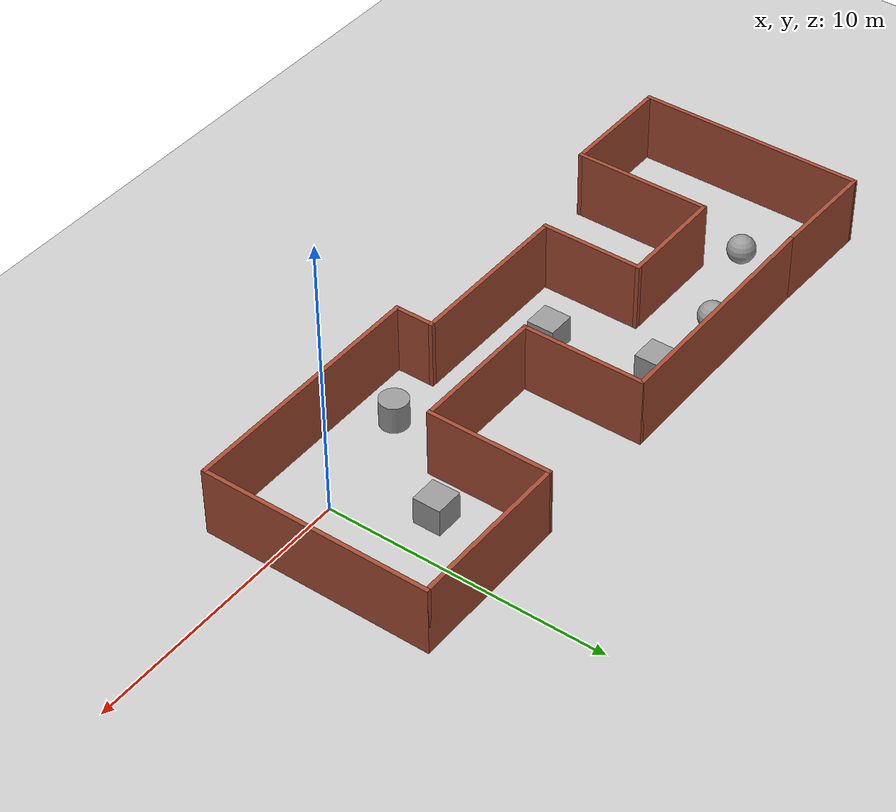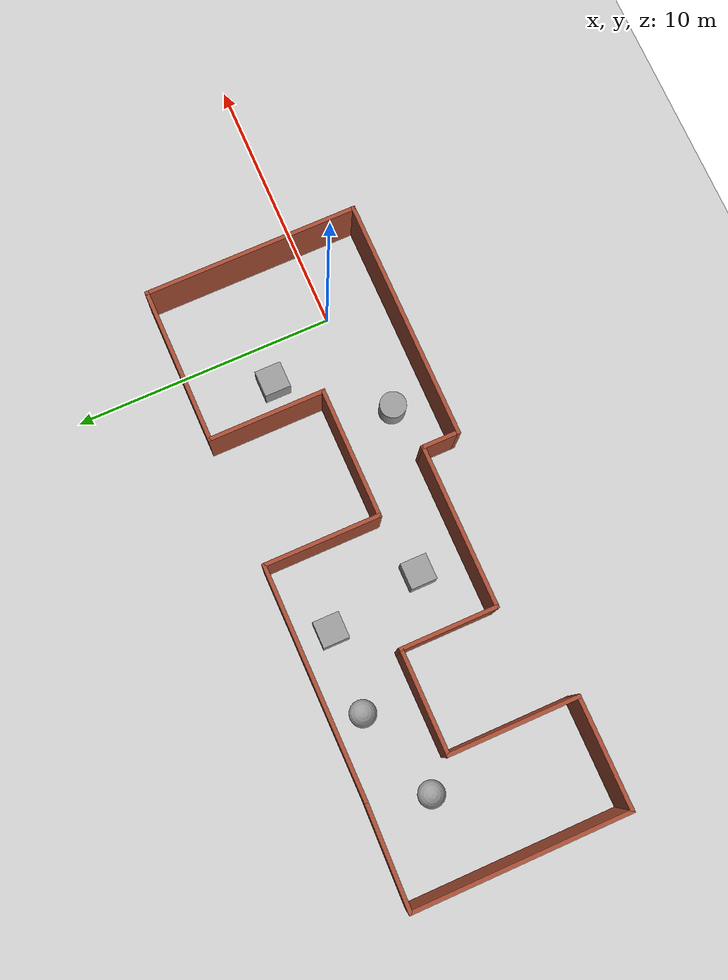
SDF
<sdf version="1.6">
 <world name="default">
  <light name="sun" type="directional">
   <pose>0 0 10 0 -0 0</pose>
   <diffuse>0.8 0.8 0.8 1</diffuse>
   <specular>0.2 0.2 0.2 1</specular>
   <attenuation>
    <range>1000</range>
    <constant>0.9</constant>
    <linear>0.01</linear>
    <quadratic>0.001</quadratic>
   </attenuation>
   <direction>-0.5 0.1 -0.9</direction>
  </light>
  <model name="ground_plane">
   <static>1</static>
   <link name="link">
    <collision name="collision">
     <geometry><plane><normal>0 0 1</normal><size>100 100</size></plane></geometry>
     <surface>
      <contact><collide_bitmask>65535</collide_bitmask></contact>
      <friction><ode><mu>100</mu><mu2>50</mu2></ode></friction>
     </surface>
    </collision>
    <visual name="visual">
     <cast_shadows>0</cast_shadows>
     <geometry><plane><normal>0 0 1</normal><size>100 100</size></plane></geometry>
     <material>
      <script><uri>file://media/materials/scripts/gazebo.material</uri><name>Gazebo/Grey</name></script>
     </material>
    </visual>
   </link>
  </model>
  <gravity>0 0 -9.8</gravity>
  <magnetic_field>6e-06 2.3e-05 -4.2e-05</magnetic_field>
  <atmosphere type="adiabatic"/>
  <physics name="default_physics" default="0" type="ode">
   <max_step_size>0.001</max_step_size>
   <real_time_factor>1</real_time_factor>
   <real_time_update_rate>1000</real_time_update_rate>
  </physics>
  <scene><ambient>0.4 0.4 0.4 1</ambient><background>0.7 0.7 0.7 1</background><shadows>1</shadows></scene>
  <audio><device>default</device></audio>
  <spherical_coordinates>
   <surface_model>EARTH_WGS84</surface_model>
   <latitude_deg>0</latitude_deg>
   <longitude_deg>0</longitude_deg>
   <elevation>0</elevation>
   <heading_deg>0</heading_deg>
  </spherical_coordinates>
  <model name="ravi">
   <pose>-8.74678 1.85668 0 0 -0 0</pose>
   <link name="Wall_0">
    <collision name="Wall_0_Collision">
     <geometry><box><size>8.75 0.15 2.5</size></box></geometry>
     <pose>0 0 1.25 0 -0 0</pose>
    </collision>
    <visual name="Wall_0_Visual">
     <pose>0 0 1.25 0 -0 0</pose>
     <geometry><box><size>8.75 0.15 2.5</size></box></geometry>
     <material>
      <script><uri>file://media/materials/scripts/gazebo.material</uri><name>Gazebo/Bricks</name></script>
      <ambient>1 1 1 1</ambient>
     </material>
     <meta><layer>0</layer></meta>
    </visual>
    <pose>-3.42404 3.99904 0 0 -0 0</pose>
   </link>
   <link name="Wall_1">
    <collision name="Wall_1_Collision">
     <geometry><box><size>4.5 0.15 2.5</size></box></geometry>
     <pose>0 0 1.25 0 -0 0</pose>
    </collision>
    <visual name="Wall_1_Visual">
     <pose>0 0 1.25 0 -0 0</pose>
     <geometry><box><size>4.5 0.15 2.5</size></box></geometry>
     <material>
      <script><uri>file://media/materials/scripts/gazebo.material</uri><name>Gazebo/Bricks</name></script>
      <ambient>1 1 1 1</ambient>
     </material>
     <meta><layer>0</layer></meta>
    </visual>
    <pose>0.875961 1.82404 0 0 -0 -1.5708</pose>
   </link>
   <link name="Wall_10">
    <collision name="Wall_10_Collision">
     <geometry><box><size>4 0.15 2.5</size></box></geometry>
     <pose>0 0 1.25 0 -0 0</pose>
    </collision>
    <visual name="Wall_10_Visual">
     <pose>0 0 1.25 0 -0 0</pose>
     <geometry><box><size>4 0.15 2.5</size></box></geometry>
     <material>
      <script><uri>file://media/materials/scripts/gazebo.material</uri><name>Gazebo/Bricks</name></script>
      <ambient>1 1 1 1</ambient>
     </material>
     <meta><layer>0</layer></meta>
    </visual>
    <pose>-5.54904 0.849039 0 0 -0 3.14159</pose>
   </link>
   <link name="Wall_11">
    <collision name="Wall_11_Collision">
     <geometry><box><size>5 0.15 2.5</size></box></geometry>
     <pose>0 0 1.25 0 -0 0</pose>
    </collision>
    <visual name="Wall_11_Visual">
     <pose>0 0 1.25 0 -0 0</pose>
     <geometry><box><size>5 0.15 2.5</size></box></geometry>
     <material>
      <script><uri>file://media/materials/scripts/gazebo.material</uri><name>Gazebo/Bricks</name></script>
      <ambient>1 1 1 1</ambient>
     </material>
     <meta><layer>0</layer></meta>
    </visual>
    <pose>-7.47404 -1.57596 0 0 -0 -1.5708</pose>
   </link>
   <link name="Wall_12">
    <collision name="Wall_12_Collision">
     <geometry><box><size>4.25 0.15 2.5</size></box></geometry>
     <pose>0 0 1.25 0 -0 0</pose>
    </collision>
    <visual name="Wall_12_Visual">
     <pose>0 0 1.25 0 -0 0</pose>
     <geometry><box><size>4.25 0.15 2.5</size></box></geometry>
     <material>
      <script><uri>file://media/materials/scripts/gazebo.material</uri><name>Gazebo/Bricks</name></script>
      <ambient>1 1 1 1</ambient>
     </material>
     <meta><layer>0</layer></meta>
    </visual>
    <pose>-9.52404 -4.00096 0 0 -0 3.14159</pose>
   </link>
   <link name="Wall_13">
    <collision name="Wall_13_Collision">
     <geometry><box><size>8.25 0.15 2.5</size></box></geometry>
     <pose>0 0 1.25 0 -0 0</pose>
    </collision>
    <visual name="Wall_13_Visual">
     <pose>0 0 1.25 0 -0 0</pose>
     <geometry><box><size>8.25 0.15 2.5</size></box></geometry>
     <material>
      <script><uri>file://media/materials/scripts/gazebo.material</uri><name>Gazebo/Bricks</name></script>
      <ambient>1 1 1 1</ambient>
     </material>
     <meta><layer>0</layer></meta>
    </visual>
    <pose>-11.574 0.049039 0 0 -0 1.5708</pose>
   </link>
   <link name="Wall_14">
    <collision name="Wall_14_Collision">
     <geometry><box><size>4.0013 0.15 2.5</size></box></geometry>
     <pose>0 0 1.25 0 -0 0</pose>
    </collision>
    <visual name="Wall_14_Visual">
     <pose>0 0 1.25 0 -0 0</pose>
     <geometry><box><size>4.0013 0.15 2.5</size></box></geometry>
     <material>
      <script><uri>file://media/materials/scripts/gazebo.material</uri><name>Gazebo/Bricks</name></script>
      <ambient>1 1 1 1</ambient>
     </material>
     <meta><layer>0</layer></meta>
    </visual>
    <pose>-9.64904 4.04904 0 0 -0 -0.025968</pose>
   </link>
   <link name="Wall_2">
    <collision name="Wall_2_Collision">
     <geometry><box><size>5 0.15 2.5</size></box></geometry>
     <pose>0 0 1.25 0 -0 0</pose>
    </collision>
    <visual name="Wall_2_Visual">
     <pose>0 0 1.25 0 -0 0</pose>
     <geometry><box><size>5 0.15 2.5</size></box></geometry>
     <material>
      <script><uri>file://media/materials/scripts/gazebo.material</uri><name>Gazebo/Bricks</name></script>
      <ambient>1 1 1 1</ambient>
     </material>
     <meta><layer>0</layer></meta>
    </visual>
    <pose>3.30096 -0.350961 0 0 -0 0</pose>
   </link>
   <link name="Wall_3">
    <collision name="Wall_3_Collision">
     <geometry><box><size>4.5 0.15 2.5</size></box></geometry>
     <pose>0 0 1.25 0 -0 0</pose>
    </collision>
    <visual name="Wall_3_Visual">
     <pose>0 0 1.25 0 -0 0</pose>
     <geometry><box><size>4.5 0.15 2.5</size></box></geometry>
     <material>
      <script><uri>file://media/materials/scripts/gazebo.material</uri><name>Gazebo/Bricks</name></script>
      <ambient>1 1 1 1</ambient>
     </material>
     <meta><layer>0</layer></meta>
    </visual>
    <pose>5.72596 1.82404 0 0 -0 1.5708</pose>
   </link>
   <link name="Wall_4">
    <collision name="Wall_4_Collision">
     <geometry><box><size>6 0.15 2.5</size></box></geometry>
     <pose>0 0 1.25 0 -0 0</pose>
    </collision>
    <visual name="Wall_4_Visual">
     <pose>0 0 1.25 0 -0 0</pose>
     <geometry><box><size>6 0.15 2.5</size></box></geometry>
     <material>
      <script><uri>file://media/materials/scripts/gazebo.material</uri><name>Gazebo/Bricks</name></script>
      <ambient>1 1 1 1</ambient>
     </material>
     <meta><layer>0</layer></meta>
    </visual>
    <pose>8.65096 3.99904 0 0 -0 0</pose>
   </link>
   <link name="Wall_5">
    <collision name="Wall_5_Collision">
     <geometry><box><size>8.25 0.15 2.5</size></box></geometry>
     <pose>0 0 1.25 0 -0 0</pose>
    </collision>
    <visual name="Wall_5_Visual">
     <pose>0 0 1.25 0 -0 0</pose>
     <geometry><box><size>8.25 0.15 2.5</size></box></geometry>
     <material>
      <script><uri>file://media/materials/scripts/gazebo.material</uri><name>Gazebo/Bricks</name></script>
      <ambient>1 1 1 1</ambient>
     </material>
     <meta><layer>0</layer></meta>
    </visual>
    <pose>11.576 -0.050961 0 0 -0 -1.5708</pose>
   </link>
   <link name="Wall_6">
    <collision name="Wall_6_Collision">
     <geometry><box><size>9.25 0.15 2.5</size></box></geometry>
     <pose>0 0 1.25 0 -0 0</pose>
    </collision>
    <visual name="Wall_6_Visual">
     <pose>0 0 1.25 0 -0 0</pose>
     <geometry><box><size>9.25 0.15 2.5</size></box></geometry>
     <material>
      <script><uri>file://media/materials/scripts/gazebo.material</uri><name>Gazebo/Bricks</name></script>
      <ambient>1 1 1 1</ambient>
     </material>
     <meta><layer>0</layer></meta>
    </visual>
    <pose>7.02596 -4.10096 0 0 -0 3.14159</pose>
   </link>
   <link name="Wall_7">
    <collision name="Wall_7_Collision">
     <geometry><box><size>1.5 0.15 2.5</size></box></geometry>
     <pose>0 0 1.25 0 -0 0</pose>
    </collision>
    <visual name="Wall_7_Visual">
     <pose>0 0 1.25 0 -0 0</pose>
     <geometry><box><size>1.5 0.15 2.5</size></box></geometry>
     <material>
      <script><uri>file://media/materials/scripts/gazebo.material</uri><name>Gazebo/Bricks</name></script>
      <ambient>1 1 1 1</ambient>
     </material>
     <meta><layer>0</layer></meta>
    </visual>
    <pose>2.47596 -3.42596 0 0 -0 1.5708</pose>
   </link>
   <link name="Wall_8">
    <collision name="Wall_8_Collision">
     <geometry><box><size>6.25 0.15 2.5</size></box></geometry>
     <pose>0 0 1.25 0 -0 0</pose>
    </collision>
    <visual name="Wall_8_Visual">
     <pose>0 0 1.25 0 -0 0</pose>
     <geometry><box><size>6.25 0.15 2.5</size></box></geometry>
     <material>
      <script><uri>file://media/materials/scripts/gazebo.material</uri><name>Gazebo/Bricks</name></script>
      <ambient>1 1 1 1</ambient>
     </material>
     <meta><layer>0</layer></meta>
    </visual>
    <pose>-0.574039 -2.75096 0 0 -0 3.14159</pose>
   </link>
   <link name="Wall_9">
    <collision name="Wall_9_Collision">
     <geometry><box><size>3.75 0.15 2.5</size></box></geometry>
     <pose>0 0 1.25 0 -0 0</pose>
    </collision>
    <visual name="Wall_9_Visual">
     <pose>0 0 1.25 0 -0 0</pose>
     <geometry><box><size>3.75 0.15 2.5</size></box></geometry>
     <material>
      <script><uri>file://media/materials/scripts/gazebo.material</uri><name>Gazebo/Bricks</name></script>
      <ambient>1 1 1 1</ambient>
     </material>
     <meta><layer>0</layer></meta>
    </visual>
    <pose>-3.62404 -0.950961 0 0 -0 1.5708</pose>
   </link>
   <static>1</static>
  </model>
  <model name="unit_box">
   <pose>-1.51228 2.85948 0.499995 -1e-05 -0 -0</pose>
   <link name="link">
    <inertial>
     <mass>1</mass>
     <inertia>
      <ixx>0.166667</ixx>
      <ixy>0</ixy>
      <ixz>0</ixz>
      <iyy>0.166667</iyy>
      <iyz>0</iyz>
      <izz>0.166667</izz>
     </inertia>
    </inertial>
    <collision name="collision"><geometry><box><size>1 1 1</size></box></geometry></collision>
    <visual name="visual">
     <geometry><box><size>1 1 1</size></box></geometry>
     <material>
      <script><name>Gazebo/Grey</name><uri>file://media/materials/scripts/gazebo.material</uri></script>
     </material>
    </visual>
   </link>
  </model>
  <model name="unit_cylinder">
   <pose>-4.15298 -0.77691 0.499992 -3e-06 -4e-06 -0</pose>
   <link name="link">
    <inertial>
     <mass>1</mass>
     <inertia><ixx>0.145833</ixx><ixy>0</ixy><ixz>0</ixz><iyy>0.145833</iyy><iyz>0</iyz><izz>0.125</izz></inertia>
    </inertial>
    <collision name="collision">
     <geometry><cylinder><radius>0.5</radius><length>1</length></cylinder></geometry>
    </collision>
    <visual name="visual">
     <geometry><cylinder><radius>0.5</radius><length>1</length></cylinder></geometry>
     <material>
      <script><name>Gazebo/Grey</name><uri>file://media/materials/scripts/gazebo.material</uri></script>
     </material>
    </visual>
   </link>
  </model>
  <model name="unit_box_0">
   <pose>-10.0621 0.88977 0.499995 -1e-05 -0 -0</pose>
   <link name="link">
    <inertial>
     <mass>1</mass>
     <inertia>
      <ixx>0.166667</ixx>
      <ixy>0</ixy>
      <ixz>0</ixz>
      <iyy>0.166667</iyy>
      <iyz>0</iyz>
      <izz>0.166667</izz>
     </inertia>
    </inertial>
    <collision name="collision"><geometry><box><size>1 1 1</size></box></geometry></collision>
    <visual name="visual">
     <geometry><box><size>1 1 1</size></box></geometry>
     <material>
      <script><name>Gazebo/Grey</name><uri>file://media/materials/scripts/gazebo.material</uri></script>
     </material>
    </visual>
   </link>
  </model>
  <model name="unit_box_1">
   <pose>-10.7115 4.56944 0.499995 0 1e-05 0</pose>
   <link name="link">
    <inertial>
     <mass>1</mass>
     <inertia>
      <ixx>0.166667</ixx>
      <ixy>0</ixy>
      <ixz>0</ixz>
      <iyy>0.166667</iyy>
      <iyz>0</iyz>
      <izz>0.166667</izz>
     </inertia>
    </inertial>
    <collision name="collision"><geometry><box><size>1 1 1</size></box></geometry></collision>
    <visual name="visual">
     <geometry><box><size>1 1 1</size></box></geometry>
     <material>
      <script><name>Gazebo/Grey</name><uri>file://media/materials/scripts/gazebo.material</uri></script>
     </material>
    </visual>
   </link>
  </model>
  <model name="unit_sphere">
   <pose>-13.8067 4.69931 0.5 0 -0 0</pose>
   <link name="link">
    <inertial>
     <mass>1</mass>
     <inertia><ixx>0.1</ixx><ixy>0</ixy><ixz>0</ixz><iyy>0.1</iyy><iyz>0</iyz><izz>0.1</izz></inertia>
    </inertial>
    <collision name="collision"><geometry><sphere><radius>0.5</radius></sphere></geometry></collision>
    <visual name="visual">
     <geometry><sphere><radius>0.5</radius></sphere></geometry>
     <material>
      <script><name>Gazebo/Grey</name><uri>file://media/materials/scripts/gazebo.material</uri></script>
     </material>
    </visual>
   </link>
  </model>
  <model name="unit_sphere_0">
   <pose>-17.2707 3.6341 0.5 0 -0 0</pose>
   <link name="link">
    <inertial>
     <mass>1</mass>
     <inertia><ixx>0.1</ixx><ixy>0</ixy><ixz>0</ixz><iyy>0.1</iyy><iyz>0</iyz><izz>0.1</izz></inertia>
    </inertial>
    <collision name="collision"><geometry><sphere><radius>0.5</radius></sphere></geometry></collision>
    <visual name="visual">
     <geometry><sphere><radius>0.5</radius></sphere></geometry>
     <material>
      <script><name>Gazebo/Grey</name><uri>file://media/materials/scripts/gazebo.material</uri></script>
     </material>
    </visual>
   </link>
  </model>
 </world>
</sdf>
